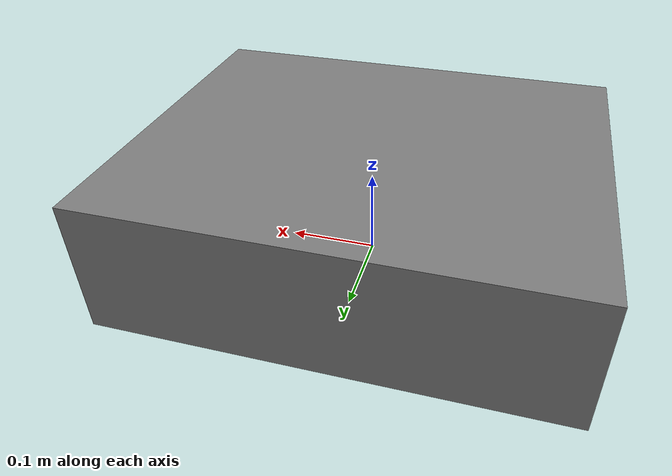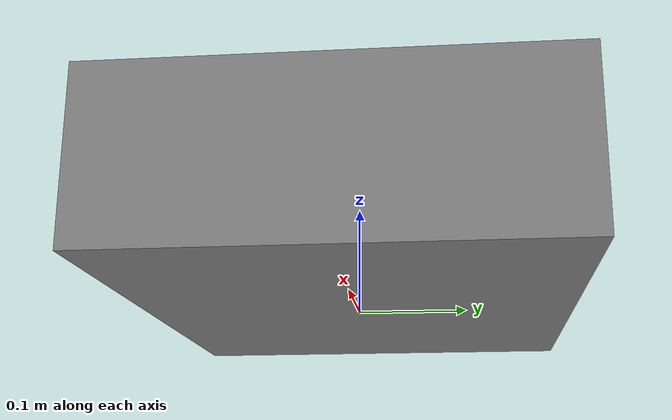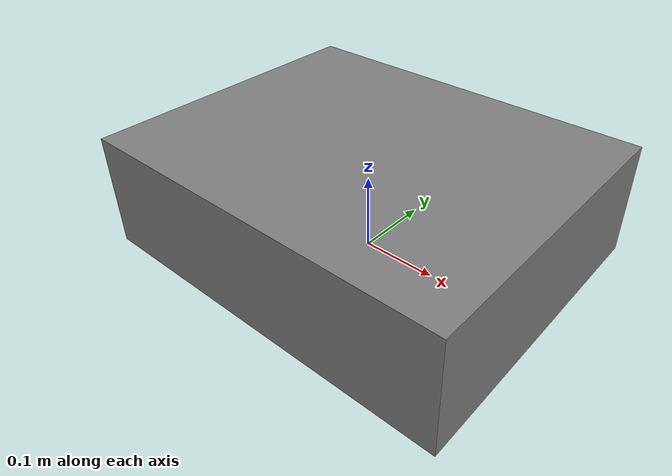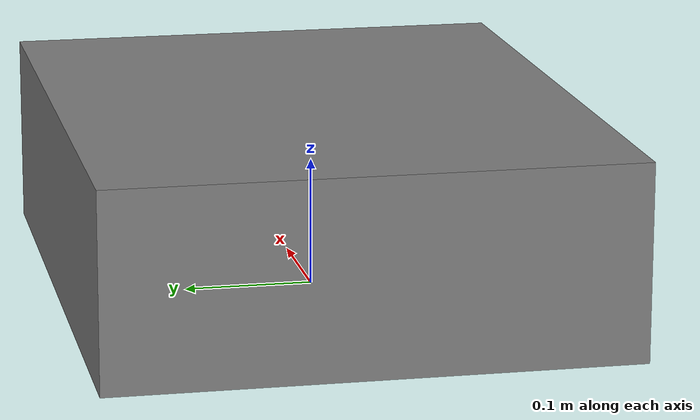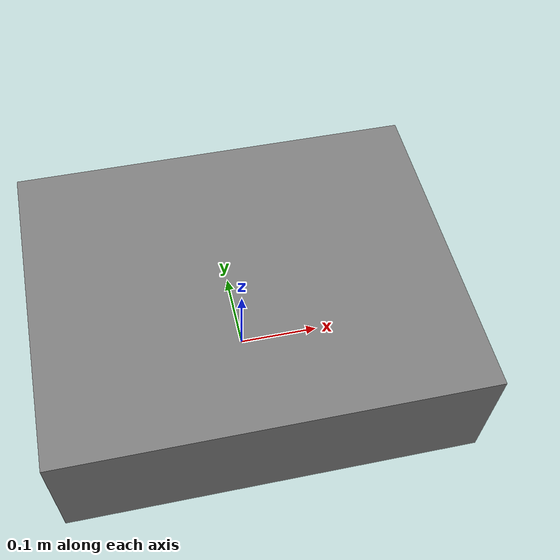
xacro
<?xml version="1.0"?>
<robot xmlns:xacro="http://www.ros.org/wiki/xacro" name="lunabot">

  <!-- TODO: Define actual robot geometry here -->
  <!-- Eric put the actual URDF here -->

  <!-- Base link (center of rear axle, ground level) -->
  <link name="base_link"/>

  <!-- Chassis placeholder -->
  <link name="chassis">
    <visual>
      <geometry>
        <box size="0.5 0.4 0.15"/>
      </geometry>
      <material name="grey">
        <color rgba="0.5 0.5 0.5 1.0"/>
      </material>
    </visual>
  </link>
  <joint name="chassis_joint" type="fixed">
    <parent link="base_link"/>
    <child link="chassis"/>
    <origin xyz="0.0 0.0 0.075" rpy="0 0 0"/>
  </joint>

  <!-- OAK-D S2 camera (update xyz to match actual mount position) -->
  <link name="oak_link"/>
  <joint name="oak_joint" type="fixed">
    <parent link="base_link"/>
    <child link="oak_link"/>
    <!-- TODO: Measure and set actual camera position on rover -->
    <origin xyz="0.25 0.0 0.15" rpy="0 0 0"/>
  </joint>

  <!-- OAK-D IMU frame (coincident with oak_link per depthai convention) -->
  <link name="oak_imu_frame"/>
  <joint name="oak_imu_joint" type="fixed">
    <parent link="oak_link"/>
    <child link="oak_imu_frame"/>
    <origin xyz="0 0 0" rpy="0 0 0"/>
  </joint>

</robot>
